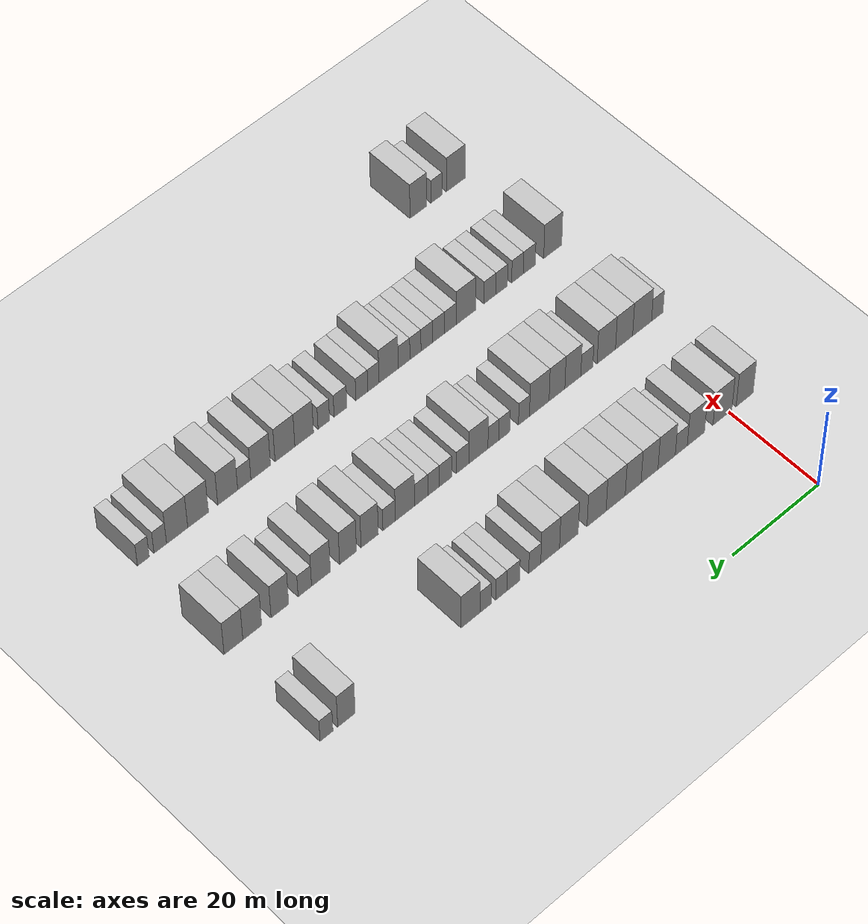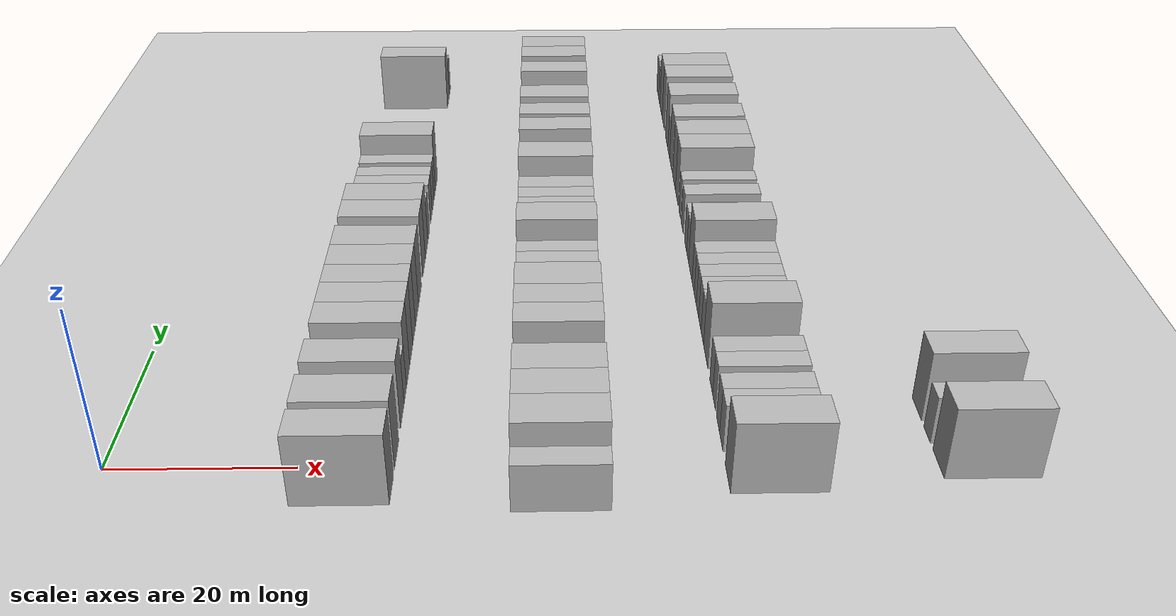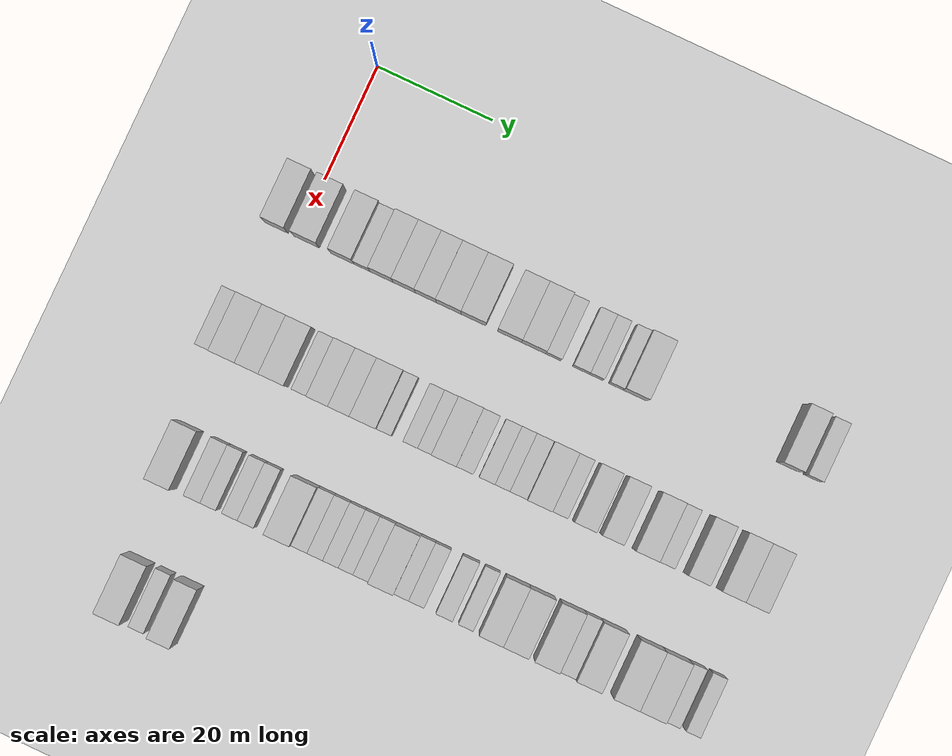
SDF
<sdf version="1.6">
 <world name="default">
  <include><name>ground_plane_1</name><uri>model://HANNAS_ground_plane</uri></include>
  <model name="building_99">
   <static>1</static>
   <pose>25.0000 -3.5786 0 0.000000 0.000000 0.000000</pose>
   <link name="link">
    <pose>0 0 4.50 0 0 0</pose>
    <collision name="collision"><geometry><box><size>10.0000 4.0479 9.0000</size></box></geometry></collision>
    <visual name="visual">
     <cast_shadows>0</cast_shadows>
     <geometry><box><size>10.0000 4.0479 9.0000</size></box></geometry>
     <material>
      <script>
       <uri>model://HANNAS_wall/materials/scripts</uri>
       <uri>model://HANNAS_wall/materials/textures</uri>
       <name>vrc/HANNAS_wall</name>
      </script>
     </material>
    </visual>
   </link>
  </model>
  <model name="building_100">
   <static>1</static>
   <pose>25.0000 1.6723 0 0.000000 0.000000 0.000000</pose>
   <link name="link">
    <pose>0 0 4.50 0 0 0</pose>
    <collision name="collision"><geometry><box><size>10.0000 4.4539 9.0000</size></box></geometry></collision>
    <visual name="visual">
     <cast_shadows>0</cast_shadows>
     <geometry><box><size>10.0000 4.4539 9.0000</size></box></geometry>
     <material>
      <script>
       <uri>model://HANNAS_wall/materials/scripts</uri>
       <uri>model://HANNAS_wall/materials/textures</uri>
       <name>vrc/HANNAS_wall</name>
      </script>
     </material>
    </visual>
   </link>
  </model>
  <model name="building_101">
   <static>1</static>
   <pose>25.0000 7.9085 0 0.000000 0.000000 0.000000</pose>
   <link name="link">
    <pose>0 0 4.50 0 0 0</pose>
    <collision name="collision"><geometry><box><size>10.0000 4.0184 9.0000</size></box></geometry></collision>
    <visual name="visual">
     <cast_shadows>0</cast_shadows>
     <geometry><box><size>10.0000 4.0184 9.0000</size></box></geometry>
     <material>
      <script>
       <uri>model://HANNAS_wall/materials/scripts</uri>
       <uri>model://HANNAS_wall/materials/textures</uri>
       <name>vrc/HANNAS_wall</name>
      </script>
     </material>
    </visual>
   </link>
  </model>
  <model name="building_102">
   <static>1</static>
   <pose>25.0000 11.3242 0 0.000000 0.000000 0.000000</pose>
   <link name="link">
    <pose>0 0 3.00 0 0 0</pose>
    <collision name="collision"><geometry><box><size>10.0000 2.8128 6.0000</size></box></geometry></collision>
    <visual name="visual">
     <cast_shadows>0</cast_shadows>
     <geometry><box><size>10.0000 2.8128 6.0000</size></box></geometry>
     <material>
      <script>
       <uri>model://HANNAS_wall/materials/scripts</uri>
       <uri>model://HANNAS_wall/materials/textures</uri>
       <name>vrc/HANNAS_wall</name>
      </script>
     </material>
    </visual>
   </link>
  </model>
  <model name="building_103">
   <static>1</static>
   <pose>25.0000 14.7339 0 0.000000 0.000000 0.000000</pose>
   <link name="link">
    <pose>0 0 4.50 0 0 0</pose>
    <collision name="collision"><geometry><box><size>10.0000 4.0067 9.0000</size></box></geometry></collision>
    <visual name="visual">
     <cast_shadows>0</cast_shadows>
     <geometry><box><size>10.0000 4.0067 9.0000</size></box></geometry>
     <material>
      <script>
       <uri>model://HANNAS_wall/materials/scripts</uri>
       <uri>model://HANNAS_wall/materials/textures</uri>
       <name>vrc/HANNAS_wall</name>
      </script>
     </material>
    </visual>
   </link>
  </model>
  <model name="building_104">
   <static>1</static>
   <pose>25.0000 18.6872 0 0.000000 0.000000 0.000000</pose>
   <link name="link">
    <pose>0 0 4.50 0 0 0</pose>
    <collision name="collision"><geometry><box><size>10.0000 3.8999 9.0000</size></box></geometry></collision>
    <visual name="visual">
     <cast_shadows>0</cast_shadows>
     <geometry><box><size>10.0000 3.8999 9.0000</size></box></geometry>
     <material>
      <script>
       <uri>model://HANNAS_wall/materials/scripts</uri>
       <uri>model://HANNAS_wall/materials/textures</uri>
       <name>vrc/HANNAS_wall</name>
      </script>
     </material>
    </visual>
   </link>
  </model>
  <model name="building_105">
   <static>1</static>
   <pose>25.0000 22.4605 0 0.000000 0.000000 0.000000</pose>
   <link name="link">
    <pose>0 0 4.50 0 0 0</pose>
    <collision name="collision"><geometry><box><size>10.0000 3.6468 9.0000</size></box></geometry></collision>
    <visual name="visual">
     <cast_shadows>0</cast_shadows>
     <geometry><box><size>10.0000 3.6468 9.0000</size></box></geometry>
     <material>
      <script>
       <uri>model://HANNAS_wall/materials/scripts</uri>
       <uri>model://HANNAS_wall/materials/textures</uri>
       <name>vrc/HANNAS_wall</name>
      </script>
     </material>
    </visual>
   </link>
  </model>
  <model name="building_106">
   <static>1</static>
   <pose>25.0000 26.4567 0 0.000000 0.000000 0.000000</pose>
   <link name="link">
    <pose>0 0 4.50 0 0 0</pose>
    <collision name="collision"><geometry><box><size>10.0000 4.3454 9.0000</size></box></geometry></collision>
    <visual name="visual">
     <cast_shadows>0</cast_shadows>
     <geometry><box><size>10.0000 4.3454 9.0000</size></box></geometry>
     <material>
      <script>
       <uri>model://HANNAS_wall/materials/scripts</uri>
       <uri>model://HANNAS_wall/materials/textures</uri>
       <name>vrc/HANNAS_wall</name>
      </script>
     </material>
    </visual>
   </link>
  </model>
  <model name="building_107">
   <static>1</static>
   <pose>25.0000 30.7911 0 0.000000 0.000000 0.000000</pose>
   <link name="link">
    <pose>0 0 4.50 0 0 0</pose>
    <collision name="collision"><geometry><box><size>10.0000 4.3235 9.0000</size></box></geometry></collision>
    <visual name="visual">
     <cast_shadows>0</cast_shadows>
     <geometry><box><size>10.0000 4.3235 9.0000</size></box></geometry>
     <material>
      <script>
       <uri>model://HANNAS_wall/materials/scripts</uri>
       <uri>model://HANNAS_wall/materials/textures</uri>
       <name>vrc/HANNAS_wall</name>
      </script>
     </material>
    </visual>
   </link>
  </model>
  <model name="building_108">
   <static>1</static>
   <pose>25.0000 37.0425 0 0.000000 0.000000 0.000000</pose>
   <link name="link">
    <pose>0 0 4.50 0 0 0</pose>
    <collision name="collision"><geometry><box><size>10.0000 4.1794 9.0000</size></box></geometry></collision>
    <visual name="visual">
     <cast_shadows>0</cast_shadows>
     <geometry><box><size>10.0000 4.1794 9.0000</size></box></geometry>
     <material>
      <script>
       <uri>model://HANNAS_wall/materials/scripts</uri>
       <uri>model://HANNAS_wall/materials/textures</uri>
       <name>vrc/HANNAS_wall</name>
      </script>
     </material>
    </visual>
   </link>
  </model>
  <model name="building_109">
   <static>1</static>
   <pose>25.0000 41.2274 0 0.000000 0.000000 0.000000</pose>
   <link name="link">
    <pose>0 0 4.50 0 0 0</pose>
    <collision name="collision"><geometry><box><size>10.0000 4.1904 9.0000</size></box></geometry></collision>
    <visual name="visual">
     <cast_shadows>0</cast_shadows>
     <geometry><box><size>10.0000 4.1904 9.0000</size></box></geometry>
     <material>
      <script>
       <uri>model://HANNAS_wall/materials/scripts</uri>
       <uri>model://HANNAS_wall/materials/textures</uri>
       <name>vrc/HANNAS_wall</name>
      </script>
     </material>
    </visual>
   </link>
  </model>
  <model name="building_110">
   <static>1</static>
   <pose>25.0000 44.6607 0 0.000000 0.000000 0.000000</pose>
   <link name="link">
    <pose>0 0 3.00 0 0 0</pose>
    <collision name="collision"><geometry><box><size>10.0000 2.6761 6.0000</size></box></geometry></collision>
    <visual name="visual">
     <cast_shadows>0</cast_shadows>
     <geometry><box><size>10.0000 2.6761 6.0000</size></box></geometry>
     <material>
      <script>
       <uri>model://HANNAS_wall/materials/scripts</uri>
       <uri>model://HANNAS_wall/materials/textures</uri>
       <name>vrc/HANNAS_wall</name>
      </script>
     </material>
    </visual>
   </link>
  </model>
  <model name="building_111">
   <static>1</static>
   <pose>25.0000 49.4309 0 0.000000 0.000000 0.000000</pose>
   <link name="link">
    <pose>0 0 3.00 0 0 0</pose>
    <collision name="collision"><geometry><box><size>10.0000 2.8644 6.0000</size></box></geometry></collision>
    <visual name="visual">
     <cast_shadows>0</cast_shadows>
     <geometry><box><size>10.0000 2.8644 6.0000</size></box></geometry>
     <material>
      <script>
       <uri>model://HANNAS_wall/materials/scripts</uri>
       <uri>model://HANNAS_wall/materials/textures</uri>
       <name>vrc/HANNAS_wall</name>
      </script>
     </material>
    </visual>
   </link>
  </model>
  <model name="building_112">
   <static>1</static>
   <pose>25.0000 52.0760 0 0.000000 0.000000 0.000000</pose>
   <link name="link">
    <pose>0 0 3.00 0 0 0</pose>
    <collision name="collision"><geometry><box><size>10.0000 2.4258 6.0000</size></box></geometry></collision>
    <visual name="visual">
     <cast_shadows>0</cast_shadows>
     <geometry><box><size>10.0000 2.4258 6.0000</size></box></geometry>
     <material>
      <script>
       <uri>model://HANNAS_wall/materials/scripts</uri>
       <uri>model://HANNAS_wall/materials/textures</uri>
       <name>vrc/HANNAS_wall</name>
      </script>
     </material>
    </visual>
   </link>
  </model>
  <model name="building_113">
   <static>1</static>
   <pose>25.0000 55.5192 0 0.000000 0.000000 0.000000</pose>
   <link name="link">
    <pose>0 0 3.00 0 0 0</pose>
    <collision name="collision"><geometry><box><size>10.0000 2.4606 6.0000</size></box></geometry></collision>
    <visual name="visual">
     <cast_shadows>0</cast_shadows>
     <geometry><box><size>10.0000 2.4606 6.0000</size></box></geometry>
     <material>
      <script>
       <uri>model://HANNAS_wall/materials/scripts</uri>
       <uri>model://HANNAS_wall/materials/textures</uri>
       <name>vrc/HANNAS_wall</name>
      </script>
     </material>
    </visual>
   </link>
  </model>
  <model name="building_114">
   <static>1</static>
   <pose>25.0000 58.7946 0 0.000000 0.000000 0.000000</pose>
   <link name="link">
    <pose>0 0 4.50 0 0 0</pose>
    <collision name="collision"><geometry><box><size>10.0000 4.0902 9.0000</size></box></geometry></collision>
    <visual name="visual">
     <cast_shadows>0</cast_shadows>
     <geometry><box><size>10.0000 4.0902 9.0000</size></box></geometry>
     <material>
      <script>
       <uri>model://HANNAS_wall/materials/scripts</uri>
       <uri>model://HANNAS_wall/materials/textures</uri>
       <name>vrc/HANNAS_wall</name>
      </script>
     </material>
    </visual>
   </link>
  </model>
  <model name="building_115">
   <static>1</static>
   <pose>25.0000 85.3161 0 0.000000 0.000000 0.000000</pose>
   <link name="link">
    <pose>0 0 4.50 0 0 0</pose>
    <collision name="collision"><geometry><box><size>10.0000 3.6509 9.0000</size></box></geometry></collision>
    <visual name="visual">
     <cast_shadows>0</cast_shadows>
     <geometry><box><size>10.0000 3.6509 9.0000</size></box></geometry>
     <material>
      <script>
       <uri>model://HANNAS_wall/materials/scripts</uri>
       <uri>model://HANNAS_wall/materials/textures</uri>
       <name>vrc/HANNAS_wall</name>
      </script>
     </material>
    </visual>
   </link>
  </model>
  <model name="building_116">
   <static>1</static>
   <pose>25.0000 89.4896 0 0.000000 0.000000 0.000000</pose>
   <link name="link">
    <pose>0 0 3.00 0 0 0</pose>
    <collision name="collision"><geometry><box><size>10.0000 2.6961 6.0000</size></box></geometry></collision>
    <visual name="visual">
     <cast_shadows>0</cast_shadows>
     <geometry><box><size>10.0000 2.6961 6.0000</size></box></geometry>
     <material>
      <script>
       <uri>model://HANNAS_wall/materials/scripts</uri>
       <uri>model://HANNAS_wall/materials/textures</uri>
       <name>vrc/HANNAS_wall</name>
      </script>
     </material>
    </visual>
   </link>
  </model>
  <model name="building_273">
   <static>1</static>
   <pose>47.0000 -5.4066 0 0.000000 0.000000 0.000000</pose>
   <link name="link">
    <pose>0 0 3.00 0 0 0</pose>
    <collision name="collision"><geometry><box><size>10.0000 2.7260 6.0000</size></box></geometry></collision>
    <visual name="visual">
     <cast_shadows>0</cast_shadows>
     <geometry><box><size>10.0000 2.7260 6.0000</size></box></geometry>
     <material>
      <script>
       <uri>model://HANNAS_wall/materials/scripts</uri>
       <uri>model://HANNAS_wall/materials/textures</uri>
       <name>vrc/HANNAS_wall</name>
      </script>
     </material>
    </visual>
   </link>
  </model>
  <model name="building_274">
   <static>1</static>
   <pose>47.0000 -1.7953 0 0.000000 0.000000 0.000000</pose>
   <link name="link">
    <pose>0 0 4.50 0 0 0</pose>
    <collision name="collision"><geometry><box><size>10.0000 4.4967 9.0000</size></box></geometry></collision>
    <visual name="visual">
     <cast_shadows>0</cast_shadows>
     <geometry><box><size>10.0000 4.4967 9.0000</size></box></geometry>
     <material>
      <script>
       <uri>model://HANNAS_wall/materials/scripts</uri>
       <uri>model://HANNAS_wall/materials/textures</uri>
       <name>vrc/HANNAS_wall</name>
      </script>
     </material>
    </visual>
   </link>
  </model>
  <model name="building_275">
   <static>1</static>
   <pose>47.0000 2.4686 0 0.000000 0.000000 0.000000</pose>
   <link name="link">
    <pose>0 0 4.50 0 0 0</pose>
    <collision name="collision"><geometry><box><size>10.0000 4.0311 9.0000</size></box></geometry></collision>
    <visual name="visual">
     <cast_shadows>0</cast_shadows>
     <geometry><box><size>10.0000 4.0311 9.0000</size></box></geometry>
     <material>
      <script>
       <uri>model://HANNAS_wall/materials/scripts</uri>
       <uri>model://HANNAS_wall/materials/textures</uri>
       <name>vrc/HANNAS_wall</name>
      </script>
     </material>
    </visual>
   </link>
  </model>
  <model name="building_276">
   <static>1</static>
   <pose>47.0000 6.6446 0 0.000000 0.000000 0.000000</pose>
   <link name="link">
    <pose>0 0 4.50 0 0 0</pose>
    <collision name="collision"><geometry><box><size>10.0000 4.3209 9.0000</size></box></geometry></collision>
    <visual name="visual">
     <cast_shadows>0</cast_shadows>
     <geometry><box><size>10.0000 4.3209 9.0000</size></box></geometry>
     <material>
      <script>
       <uri>model://HANNAS_wall/materials/scripts</uri>
       <uri>model://HANNAS_wall/materials/textures</uri>
       <name>vrc/HANNAS_wall</name>
      </script>
     </material>
    </visual>
   </link>
  </model>
  <model name="building_277">
   <static>1</static>
   <pose>47.0000 11.2035 0 0.000000 0.000000 0.000000</pose>
   <link name="link">
    <pose>0 0 3.00 0 0 0</pose>
    <collision name="collision"><geometry><box><size>10.0000 2.7969 6.0000</size></box></geometry></collision>
    <visual name="visual">
     <cast_shadows>0</cast_shadows>
     <geometry><box><size>10.0000 2.7969 6.0000</size></box></geometry>
     <material>
      <script>
       <uri>model://HANNAS_wall/materials/scripts</uri>
       <uri>model://HANNAS_wall/materials/textures</uri>
       <name>vrc/HANNAS_wall</name>
      </script>
     </material>
    </visual>
   </link>
  </model>
  <model name="building_278">
   <static>1</static>
   <pose>47.0000 14.4505 0 0.000000 0.000000 0.000000</pose>
   <link name="link">
    <pose>0 0 4.50 0 0 0</pose>
    <collision name="collision"><geometry><box><size>10.0000 3.6971 9.0000</size></box></geometry></collision>
    <visual name="visual">
     <cast_shadows>0</cast_shadows>
     <geometry><box><size>10.0000 3.6971 9.0000</size></box></geometry>
     <material>
      <script>
       <uri>model://HANNAS_wall/materials/scripts</uri>
       <uri>model://HANNAS_wall/materials/textures</uri>
       <name>vrc/HANNAS_wall</name>
      </script>
     </material>
    </visual>
   </link>
  </model>
  <model name="building_279">
   <static>1</static>
   <pose>47.0000 18.1224 0 0.000000 0.000000 0.000000</pose>
   <link name="link">
    <pose>0 0 4.50 0 0 0</pose>
    <collision name="collision"><geometry><box><size>10.0000 3.6466 9.0000</size></box></geometry></collision>
    <visual name="visual">
     <cast_shadows>0</cast_shadows>
     <geometry><box><size>10.0000 3.6466 9.0000</size></box></geometry>
     <material>
      <script>
       <uri>model://HANNAS_wall/materials/scripts</uri>
       <uri>model://HANNAS_wall/materials/textures</uri>
       <name>vrc/HANNAS_wall</name>
      </script>
     </material>
    </visual>
   </link>
  </model>
  <model name="building_280">
   <static>1</static>
   <pose>47.0000 22.1916 0 0.000000 0.000000 0.000000</pose>
   <link name="link">
    <pose>0 0 4.50 0 0 0</pose>
    <collision name="collision"><geometry><box><size>10.0000 4.4919 9.0000</size></box></geometry></collision>
    <visual name="visual">
     <cast_shadows>0</cast_shadows>
     <geometry><box><size>10.0000 4.4919 9.0000</size></box></geometry>
     <material>
      <script>
       <uri>model://HANNAS_wall/materials/scripts</uri>
       <uri>model://HANNAS_wall/materials/textures</uri>
       <name>vrc/HANNAS_wall</name>
      </script>
     </material>
    </visual>
   </link>
  </model>
  <model name="building_281">
   <static>1</static>
   <pose>47.0000 25.6968 0 0.000000 0.000000 0.000000</pose>
   <link name="link">
    <pose>0 0 3.00 0 0 0</pose>
    <collision name="collision"><geometry><box><size>10.0000 2.5184 6.0000</size></box></geometry></collision>
    <visual name="visual">
     <cast_shadows>0</cast_shadows>
     <geometry><box><size>10.0000 2.5184 6.0000</size></box></geometry>
     <material>
      <script>
       <uri>model://HANNAS_wall/materials/scripts</uri>
       <uri>model://HANNAS_wall/materials/textures</uri>
       <name>vrc/HANNAS_wall</name>
      </script>
     </material>
    </visual>
   </link>
  </model>
  <model name="building_282">
   <static>1</static>
   <pose>47.0000 30.2159 0 0.000000 0.000000 0.000000</pose>
   <link name="link">
    <pose>0 0 3.00 0 0 0</pose>
    <collision name="collision"><geometry><box><size>10.0000 2.5199 6.0000</size></box></geometry></collision>
    <visual name="visual">
     <cast_shadows>0</cast_shadows>
     <geometry><box><size>10.0000 2.5199 6.0000</size></box></geometry>
     <material>
      <script>
       <uri>model://HANNAS_wall/materials/scripts</uri>
       <uri>model://HANNAS_wall/materials/textures</uri>
       <name>vrc/HANNAS_wall</name>
      </script>
     </material>
    </visual>
   </link>
  </model>
  <model name="building_283">
   <static>1</static>
   <pose>47.0000 32.6810 0 0.000000 0.000000 0.000000</pose>
   <link name="link">
    <pose>0 0 3.00 0 0 0</pose>
    <collision name="collision"><geometry><box><size>10.0000 2.4103 6.0000</size></box></geometry></collision>
    <visual name="visual">
     <cast_shadows>0</cast_shadows>
     <geometry><box><size>10.0000 2.4103 6.0000</size></box></geometry>
     <material>
      <script>
       <uri>model://HANNAS_wall/materials/scripts</uri>
       <uri>model://HANNAS_wall/materials/textures</uri>
       <name>vrc/HANNAS_wall</name>
      </script>
     </material>
    </visual>
   </link>
  </model>
  <model name="building_284">
   <static>1</static>
   <pose>47.0000 36.0242 0 0.000000 0.000000 0.000000</pose>
   <link name="link">
    <pose>0 0 4.50 0 0 0</pose>
    <collision name="collision"><geometry><box><size>10.0000 4.2761 9.0000</size></box></geometry></collision>
    <visual name="visual">
     <cast_shadows>0</cast_shadows>
     <geometry><box><size>10.0000 4.2761 9.0000</size></box></geometry>
     <material>
      <script>
       <uri>model://HANNAS_wall/materials/scripts</uri>
       <uri>model://HANNAS_wall/materials/textures</uri>
       <name>vrc/HANNAS_wall</name>
      </script>
     </material>
    </visual>
   </link>
  </model>
  <model name="building_285">
   <static>1</static>
   <pose>47.0000 39.6017 0 0.000000 0.000000 0.000000</pose>
   <link name="link">
    <pose>0 0 3.00 0 0 0</pose>
    <collision name="collision"><geometry><box><size>10.0000 2.8790 6.0000</size></box></geometry></collision>
    <visual name="visual">
     <cast_shadows>0</cast_shadows>
     <geometry><box><size>10.0000 2.8790 6.0000</size></box></geometry>
     <material>
      <script>
       <uri>model://HANNAS_wall/materials/scripts</uri>
       <uri>model://HANNAS_wall/materials/textures</uri>
       <name>vrc/HANNAS_wall</name>
      </script>
     </material>
    </visual>
   </link>
  </model>
  <model name="building_286">
   <static>1</static>
   <pose>47.0000 43.3974 0 0.000000 0.000000 0.000000</pose>
   <link name="link">
    <pose>0 0 3.00 0 0 0</pose>
    <collision name="collision"><geometry><box><size>10.0000 2.7123 6.0000</size></box></geometry></collision>
    <visual name="visual">
     <cast_shadows>0</cast_shadows>
     <geometry><box><size>10.0000 2.7123 6.0000</size></box></geometry>
     <material>
      <script>
       <uri>model://HANNAS_wall/materials/scripts</uri>
       <uri>model://HANNAS_wall/materials/textures</uri>
       <name>vrc/HANNAS_wall</name>
      </script>
     </material>
    </visual>
   </link>
  </model>
  <model name="building_287">
   <static>1</static>
   <pose>47.0000 46.0360 0 0.000000 0.000000 0.000000</pose>
   <link name="link">
    <pose>0 0 3.00 0 0 0</pose>
    <collision name="collision"><geometry><box><size>10.0000 2.5650 6.0000</size></box></geometry></collision>
    <visual name="visual">
     <cast_shadows>0</cast_shadows>
     <geometry><box><size>10.0000 2.5650 6.0000</size></box></geometry>
     <material>
      <script>
       <uri>model://HANNAS_wall/materials/scripts</uri>
       <uri>model://HANNAS_wall/materials/textures</uri>
       <name>vrc/HANNAS_wall</name>
      </script>
     </material>
    </visual>
   </link>
  </model>
  <model name="building_288">
   <static>1</static>
   <pose>47.0000 48.7951 0 0.000000 0.000000 0.000000</pose>
   <link name="link">
    <pose>0 0 3.00 0 0 0</pose>
    <collision name="collision"><geometry><box><size>10.0000 2.9533 6.0000</size></box></geometry></collision>
    <visual name="visual">
     <cast_shadows>0</cast_shadows>
     <geometry><box><size>10.0000 2.9533 6.0000</size></box></geometry>
     <material>
      <script>
       <uri>model://HANNAS_wall/materials/scripts</uri>
       <uri>model://HANNAS_wall/materials/textures</uri>
       <name>vrc/HANNAS_wall</name>
      </script>
     </material>
    </visual>
   </link>
  </model>
  <model name="building_289">
   <static>1</static>
   <pose>47.0000 52.3884 0 0.000000 0.000000 0.000000</pose>
   <link name="link">
    <pose>0 0 4.50 0 0 0</pose>
    <collision name="collision"><geometry><box><size>10.0000 4.2331 9.0000</size></box></geometry></collision>
    <visual name="visual">
     <cast_shadows>0</cast_shadows>
     <geometry><box><size>10.0000 4.2331 9.0000</size></box></geometry>
     <material>
      <script>
       <uri>model://HANNAS_wall/materials/scripts</uri>
       <uri>model://HANNAS_wall/materials/textures</uri>
       <name>vrc/HANNAS_wall</name>
      </script>
     </material>
    </visual>
   </link>
  </model>
  <model name="building_290">
   <static>1</static>
   <pose>47.0000 55.8755 0 0.000000 0.000000 0.000000</pose>
   <link name="link">
    <pose>0 0 3.00 0 0 0</pose>
    <collision name="collision"><geometry><box><size>10.0000 2.7411 6.0000</size></box></geometry></collision>
    <visual name="visual">
     <cast_shadows>0</cast_shadows>
     <geometry><box><size>10.0000 2.7411 6.0000</size></box></geometry>
     <material>
      <script>
       <uri>model://HANNAS_wall/materials/scripts</uri>
       <uri>model://HANNAS_wall/materials/textures</uri>
       <name>vrc/HANNAS_wall</name>
      </script>
     </material>
    </visual>
   </link>
  </model>
  <model name="building_291">
   <static>1</static>
   <pose>47.0000 60.1244 0 0.000000 0.000000 0.000000</pose>
   <link name="link">
    <pose>0 0 4.50 0 0 0</pose>
    <collision name="collision"><geometry><box><size>10.0000 3.7568 9.0000</size></box></geometry></collision>
    <visual name="visual">
     <cast_shadows>0</cast_shadows>
     <geometry><box><size>10.0000 3.7568 9.0000</size></box></geometry>
     <material>
      <script>
       <uri>model://HANNAS_wall/materials/scripts</uri>
       <uri>model://HANNAS_wall/materials/textures</uri>
       <name>vrc/HANNAS_wall</name>
      </script>
     </material>
    </visual>
   </link>
  </model>
  <model name="building_292">
   <static>1</static>
   <pose>47.0000 64.8252 0 0.000000 0.000000 0.000000</pose>
   <link name="link">
    <pose>0 0 4.50 0 0 0</pose>
    <collision name="collision"><geometry><box><size>10.0000 3.6447 9.0000</size></box></geometry></collision>
    <visual name="visual">
     <cast_shadows>0</cast_shadows>
     <geometry><box><size>10.0000 3.6447 9.0000</size></box></geometry>
     <material>
      <script>
       <uri>model://HANNAS_wall/materials/scripts</uri>
       <uri>model://HANNAS_wall/materials/textures</uri>
       <name>vrc/HANNAS_wall</name>
      </script>
     </material>
    </visual>
   </link>
  </model>
  <model name="building_293">
   <static>1</static>
   <pose>47.0000 70.6656 0 0.000000 0.000000 0.000000</pose>
   <link name="link">
    <pose>0 0 4.50 0 0 0</pose>
    <collision name="collision"><geometry><box><size>10.0000 4.0361 9.0000</size></box></geometry></collision>
    <visual name="visual">
     <cast_shadows>0</cast_shadows>
     <geometry><box><size>10.0000 4.0361 9.0000</size></box></geometry>
     <material>
      <script>
       <uri>model://HANNAS_wall/materials/scripts</uri>
       <uri>model://HANNAS_wall/materials/textures</uri>
       <name>vrc/HANNAS_wall</name>
      </script>
     </material>
    </visual>
   </link>
  </model>
  <model name="building_294">
   <static>1</static>
   <pose>47.0000 74.1210 0 0.000000 0.000000 0.000000</pose>
   <link name="link">
    <pose>0 0 3.00 0 0 0</pose>
    <collision name="collision"><geometry><box><size>10.0000 2.8747 6.0000</size></box></geometry></collision>
    <visual name="visual">
     <cast_shadows>0</cast_shadows>
     <geometry><box><size>10.0000 2.8747 6.0000</size></box></geometry>
     <material>
      <script>
       <uri>model://HANNAS_wall/materials/scripts</uri>
       <uri>model://HANNAS_wall/materials/textures</uri>
       <name>vrc/HANNAS_wall</name>
      </script>
     </material>
    </visual>
   </link>
  </model>
  <model name="building_295">
   <static>1</static>
   <pose>47.0000 79.4238 0 0.000000 0.000000 0.000000</pose>
   <link name="link">
    <pose>0 0 4.50 0 0 0</pose>
    <collision name="collision"><geometry><box><size>10.0000 3.7308 9.0000</size></box></geometry></collision>
    <visual name="visual">
     <cast_shadows>0</cast_shadows>
     <geometry><box><size>10.0000 3.7308 9.0000</size></box></geometry>
     <material>
      <script>
       <uri>model://HANNAS_wall/materials/scripts</uri>
       <uri>model://HANNAS_wall/materials/textures</uri>
       <name>vrc/HANNAS_wall</name>
      </script>
     </material>
    </visual>
   </link>
  </model>
  <model name="building_296">
   <static>1</static>
   <pose>47.0000 85.2600 0 0.000000 0.000000 0.000000</pose>
   <link name="link">
    <pose>0 0 4.50 0 0 0</pose>
    <collision name="collision"><geometry><box><size>10.0000 3.9417 9.0000</size></box></geometry></collision>
    <visual name="visual">
     <cast_shadows>0</cast_shadows>
     <geometry><box><size>10.0000 3.9417 9.0000</size></box></geometry>
     <material>
      <script>
       <uri>model://HANNAS_wall/materials/scripts</uri>
       <uri>model://HANNAS_wall/materials/textures</uri>
       <name>vrc/HANNAS_wall</name>
      </script>
     </material>
    </visual>
   </link>
  </model>
  <model name="building_297">
   <static>1</static>
   <pose>47.0000 89.1967 0 0.000000 0.000000 0.000000</pose>
   <link name="link">
    <pose>0 0 4.50 0 0 0</pose>
    <collision name="collision"><geometry><box><size>10.0000 3.9317 9.0000</size></box></geometry></collision>
    <visual name="visual">
     <cast_shadows>0</cast_shadows>
     <geometry><box><size>10.0000 3.9317 9.0000</size></box></geometry>
     <material>
      <script>
       <uri>model://HANNAS_wall/materials/scripts</uri>
       <uri>model://HANNAS_wall/materials/textures</uri>
       <name>vrc/HANNAS_wall</name>
      </script>
     </material>
    </visual>
   </link>
  </model>
  <model name="building_457">
   <static>1</static>
   <pose>69.0000 -2.4509 0 0.000000 0.000000 0.000000</pose>
   <link name="link">
    <pose>0 0 4.50 0 0 0</pose>
    <collision name="collision"><geometry><box><size>10.0000 4.2604 9.0000</size></box></geometry></collision>
    <visual name="visual">
     <cast_shadows>0</cast_shadows>
     <geometry><box><size>10.0000 4.2604 9.0000</size></box></geometry>
     <material>
      <script>
       <uri>model://HANNAS_wall/materials/scripts</uri>
       <uri>model://HANNAS_wall/materials/textures</uri>
       <name>vrc/HANNAS_wall</name>
      </script>
     </material>
    </visual>
   </link>
  </model>
  <model name="building_458">
   <static>1</static>
   <pose>69.0000 3.1097 0 0.000000 0.000000 0.000000</pose>
   <link name="link">
    <pose>0 0 3.00 0 0 0</pose>
    <collision name="collision"><geometry><box><size>10.0000 2.8607 6.0000</size></box></geometry></collision>
    <visual name="visual">
     <cast_shadows>0</cast_shadows>
     <geometry><box><size>10.0000 2.8607 6.0000</size></box></geometry>
     <material>
      <script>
       <uri>model://HANNAS_wall/materials/scripts</uri>
       <uri>model://HANNAS_wall/materials/textures</uri>
       <name>vrc/HANNAS_wall</name>
      </script>
     </material>
    </visual>
   </link>
  </model>
  <model name="building_459">
   <static>1</static>
   <pose>69.0000 5.8913 0 0.000000 0.000000 0.000000</pose>
   <link name="link">
    <pose>0 0 3.00 0 0 0</pose>
    <collision name="collision"><geometry><box><size>10.0000 2.7025 6.0000</size></box></geometry></collision>
    <visual name="visual">
     <cast_shadows>0</cast_shadows>
     <geometry><box><size>10.0000 2.7025 6.0000</size></box></geometry>
     <material>
      <script>
       <uri>model://HANNAS_wall/materials/scripts</uri>
       <uri>model://HANNAS_wall/materials/textures</uri>
       <name>vrc/HANNAS_wall</name>
      </script>
     </material>
    </visual>
   </link>
  </model>
  <model name="building_460">
   <static>1</static>
   <pose>69.0000 9.5917 0 0.000000 0.000000 0.000000</pose>
   <link name="link">
    <pose>0 0 3.00 0 0 0</pose>
    <collision name="collision"><geometry><box><size>10.0000 2.6982 6.0000</size></box></geometry></collision>
    <visual name="visual">
     <cast_shadows>0</cast_shadows>
     <geometry><box><size>10.0000 2.6982 6.0000</size></box></geometry>
     <material>
      <script>
       <uri>model://HANNAS_wall/materials/scripts</uri>
       <uri>model://HANNAS_wall/materials/textures</uri>
       <name>vrc/HANNAS_wall</name>
      </script>
     </material>
    </visual>
   </link>
  </model>
  <model name="building_461">
   <static>1</static>
   <pose>69.0000 12.3222 0 0.000000 0.000000 0.000000</pose>
   <link name="link">
    <pose>0 0 3.00 0 0 0</pose>
    <collision name="collision"><geometry><box><size>10.0000 2.7628 6.0000</size></box></geometry></collision>
    <visual name="visual">
     <cast_shadows>0</cast_shadows>
     <geometry><box><size>10.0000 2.7628 6.0000</size></box></geometry>
     <material>
      <script>
       <uri>model://HANNAS_wall/materials/scripts</uri>
       <uri>model://HANNAS_wall/materials/textures</uri>
       <name>vrc/HANNAS_wall</name>
      </script>
     </material>
    </visual>
   </link>
  </model>
  <model name="building_462">
   <static>1</static>
   <pose>69.0000 17.9052 0 0.000000 0.000000 0.000000</pose>
   <link name="link">
    <pose>0 0 4.50 0 0 0</pose>
    <collision name="collision"><geometry><box><size>10.0000 4.4031 9.0000</size></box></geometry></collision>
    <visual name="visual">
     <cast_shadows>0</cast_shadows>
     <geometry><box><size>10.0000 4.4031 9.0000</size></box></geometry>
     <material>
      <script>
       <uri>model://HANNAS_wall/materials/scripts</uri>
       <uri>model://HANNAS_wall/materials/textures</uri>
       <name>vrc/HANNAS_wall</name>
      </script>
     </material>
    </visual>
   </link>
  </model>
  <model name="building_463">
   <static>1</static>
   <pose>69.0000 21.4842 0 0.000000 0.000000 0.000000</pose>
   <link name="link">
    <pose>0 0 3.00 0 0 0</pose>
    <collision name="collision"><geometry><box><size>10.0000 2.7549 6.0000</size></box></geometry></collision>
    <visual name="visual">
     <cast_shadows>0</cast_shadows>
     <geometry><box><size>10.0000 2.7549 6.0000</size></box></geometry>
     <material>
      <script>
       <uri>model://HANNAS_wall/materials/scripts</uri>
       <uri>model://HANNAS_wall/materials/textures</uri>
       <name>vrc/HANNAS_wall</name>
      </script>
     </material>
    </visual>
   </link>
  </model>
  <model name="building_464">
   <static>1</static>
   <pose>69.0000 24.2068 0 0.000000 0.000000 0.000000</pose>
   <link name="link">
    <pose>0 0 3.00 0 0 0</pose>
    <collision name="collision"><geometry><box><size>10.0000 2.6904 6.0000</size></box></geometry></collision>
    <visual name="visual">
     <cast_shadows>0</cast_shadows>
     <geometry><box><size>10.0000 2.6904 6.0000</size></box></geometry>
     <material>
      <script>
       <uri>model://HANNAS_wall/materials/scripts</uri>
       <uri>model://HANNAS_wall/materials/textures</uri>
       <name>vrc/HANNAS_wall</name>
      </script>
     </material>
    </visual>
   </link>
  </model>
  <model name="building_465">
   <static>1</static>
   <pose>69.0000 26.8869 0 0.000000 0.000000 0.000000</pose>
   <link name="link">
    <pose>0 0 3.00 0 0 0</pose>
    <collision name="collision"><geometry><box><size>10.0000 2.6697 6.0000</size></box></geometry></collision>
    <visual name="visual">
     <cast_shadows>0</cast_shadows>
     <geometry><box><size>10.0000 2.6697 6.0000</size></box></geometry>
     <material>
      <script>
       <uri>model://HANNAS_wall/materials/scripts</uri>
       <uri>model://HANNAS_wall/materials/textures</uri>
       <name>vrc/HANNAS_wall</name>
      </script>
     </material>
    </visual>
   </link>
  </model>
  <model name="building_466">
   <static>1</static>
   <pose>69.0000 29.4772 0 0.000000 0.000000 0.000000</pose>
   <link name="link">
    <pose>0 0 3.00 0 0 0</pose>
    <collision name="collision"><geometry><box><size>10.0000 2.5109 6.0000</size></box></geometry></collision>
    <visual name="visual">
     <cast_shadows>0</cast_shadows>
     <geometry><box><size>10.0000 2.5109 6.0000</size></box></geometry>
     <material>
      <script>
       <uri>model://HANNAS_wall/materials/scripts</uri>
       <uri>model://HANNAS_wall/materials/textures</uri>
       <name>vrc/HANNAS_wall</name>
      </script>
     </material>
    </visual>
   </link>
  </model>
  <model name="building_467">
   <static>1</static>
   <pose>69.0000 32.0564 0 0.000000 0.000000 0.000000</pose>
   <link name="link">
    <pose>0 0 3.00 0 0 0</pose>
    <collision name="collision"><geometry><box><size>10.0000 2.6475 6.0000</size></box></geometry></collision>
    <visual name="visual">
     <cast_shadows>0</cast_shadows>
     <geometry><box><size>10.0000 2.6475 6.0000</size></box></geometry>
     <material>
      <script>
       <uri>model://HANNAS_wall/materials/scripts</uri>
       <uri>model://HANNAS_wall/materials/textures</uri>
       <name>vrc/HANNAS_wall</name>
      </script>
     </material>
    </visual>
   </link>
  </model>
  <model name="building_468">
   <static>1</static>
   <pose>69.0000 35.5480 0 0.000000 0.000000 0.000000</pose>
   <link name="link">
    <pose>0 0 4.50 0 0 0</pose>
    <collision name="collision"><geometry><box><size>10.0000 4.3356 9.0000</size></box></geometry></collision>
    <visual name="visual">
     <cast_shadows>0</cast_shadows>
     <geometry><box><size>10.0000 4.3356 9.0000</size></box></geometry>
     <material>
      <script>
       <uri>model://HANNAS_wall/materials/scripts</uri>
       <uri>model://HANNAS_wall/materials/textures</uri>
       <name>vrc/HANNAS_wall</name>
      </script>
     </material>
    </visual>
   </link>
  </model>
  <model name="building_469">
   <static>1</static>
   <pose>69.0000 38.9818 0 0.000000 0.000000 0.000000</pose>
   <link name="link">
    <pose>0 0 3.00 0 0 0</pose>
    <collision name="collision"><geometry><box><size>10.0000 2.5320 6.0000</size></box></geometry></collision>
    <visual name="visual">
     <cast_shadows>0</cast_shadows>
     <geometry><box><size>10.0000 2.5320 6.0000</size></box></geometry>
     <material>
      <script>
       <uri>model://HANNAS_wall/materials/scripts</uri>
       <uri>model://HANNAS_wall/materials/textures</uri>
       <name>vrc/HANNAS_wall</name>
      </script>
     </material>
    </visual>
   </link>
  </model>
  <model name="building_470">
   <static>1</static>
   <pose>69.0000 41.5823 0 0.000000 0.000000 0.000000</pose>
   <link name="link">
    <pose>0 0 3.00 0 0 0</pose>
    <collision name="collision"><geometry><box><size>10.0000 2.6691 6.0000</size></box></geometry></collision>
    <visual name="visual">
     <cast_shadows>0</cast_shadows>
     <geometry><box><size>10.0000 2.6691 6.0000</size></box></geometry>
     <material>
      <script>
       <uri>model://HANNAS_wall/materials/scripts</uri>
       <uri>model://HANNAS_wall/materials/textures</uri>
       <name>vrc/HANNAS_wall</name>
      </script>
     </material>
    </visual>
   </link>
  </model>
  <model name="building_471">
   <static>1</static>
   <pose>69.0000 46.3509 0 0.000000 0.000000 0.000000</pose>
   <link name="link">
    <pose>0 0 3.00 0 0 0</pose>
    <collision name="collision"><geometry><box><size>10.0000 2.8679 6.0000</size></box></geometry></collision>
    <visual name="visual">
     <cast_shadows>0</cast_shadows>
     <geometry><box><size>10.0000 2.8679 6.0000</size></box></geometry>
     <material>
      <script>
       <uri>model://HANNAS_wall/materials/scripts</uri>
       <uri>model://HANNAS_wall/materials/textures</uri>
       <name>vrc/HANNAS_wall</name>
      </script>
     </material>
    </visual>
   </link>
  </model>
  <model name="building_472">
   <static>1</static>
   <pose>69.0000 50.0619 0 0.000000 0.000000 0.000000</pose>
   <link name="link">
    <pose>0 0 3.00 0 0 0</pose>
    <collision name="collision"><geometry><box><size>10.0000 2.5542 6.0000</size></box></geometry></collision>
    <visual name="visual">
     <cast_shadows>0</cast_shadows>
     <geometry><box><size>10.0000 2.5542 6.0000</size></box></geometry>
     <material>
      <script>
       <uri>model://HANNAS_wall/materials/scripts</uri>
       <uri>model://HANNAS_wall/materials/textures</uri>
       <name>vrc/HANNAS_wall</name>
      </script>
     </material>
    </visual>
   </link>
  </model>
  <model name="building_473">
   <static>1</static>
   <pose>69.0000 54.3929 0 0.000000 0.000000 0.000000</pose>
   <link name="link">
    <pose>0 0 4.50 0 0 0</pose>
    <collision name="collision"><geometry><box><size>10.0000 4.1076 9.0000</size></box></geometry></collision>
    <visual name="visual">
     <cast_shadows>0</cast_shadows>
     <geometry><box><size>10.0000 4.1076 9.0000</size></box></geometry>
     <material>
      <script>
       <uri>model://HANNAS_wall/materials/scripts</uri>
       <uri>model://HANNAS_wall/materials/textures</uri>
       <name>vrc/HANNAS_wall</name>
      </script>
     </material>
    </visual>
   </link>
  </model>
  <model name="building_474">
   <static>1</static>
   <pose>69.0000 58.6129 0 0.000000 0.000000 0.000000</pose>
   <link name="link">
    <pose>0 0 4.50 0 0 0</pose>
    <collision name="collision"><geometry><box><size>10.0000 4.3325 9.0000</size></box></geometry></collision>
    <visual name="visual">
     <cast_shadows>0</cast_shadows>
     <geometry><box><size>10.0000 4.3325 9.0000</size></box></geometry>
     <material>
      <script>
       <uri>model://HANNAS_wall/materials/scripts</uri>
       <uri>model://HANNAS_wall/materials/textures</uri>
       <name>vrc/HANNAS_wall</name>
      </script>
     </material>
    </visual>
   </link>
  </model>
  <model name="building_475">
   <static>1</static>
   <pose>69.0000 63.9003 0 0.000000 0.000000 0.000000</pose>
   <link name="link">
    <pose>0 0 4.50 0 0 0</pose>
    <collision name="collision"><geometry><box><size>10.0000 4.2422 9.0000</size></box></geometry></collision>
    <visual name="visual">
     <cast_shadows>0</cast_shadows>
     <geometry><box><size>10.0000 4.2422 9.0000</size></box></geometry>
     <material>
      <script>
       <uri>model://HANNAS_wall/materials/scripts</uri>
       <uri>model://HANNAS_wall/materials/textures</uri>
       <name>vrc/HANNAS_wall</name>
      </script>
     </material>
    </visual>
   </link>
  </model>
  <model name="building_476">
   <static>1</static>
   <pose>69.0000 67.4533 0 0.000000 0.000000 0.000000</pose>
   <link name="link">
    <pose>0 0 3.00 0 0 0</pose>
    <collision name="collision"><geometry><box><size>10.0000 2.8638 6.0000</size></box></geometry></collision>
    <visual name="visual">
     <cast_shadows>0</cast_shadows>
     <geometry><box><size>10.0000 2.8638 6.0000</size></box></geometry>
     <material>
      <script>
       <uri>model://HANNAS_wall/materials/scripts</uri>
       <uri>model://HANNAS_wall/materials/textures</uri>
       <name>vrc/HANNAS_wall</name>
      </script>
     </material>
    </visual>
   </link>
  </model>
  <model name="building_477">
   <static>1</static>
   <pose>69.0000 71.0246 0 0.000000 0.000000 0.000000</pose>
   <link name="link">
    <pose>0 0 4.50 0 0 0</pose>
    <collision name="collision"><geometry><box><size>10.0000 4.2788 9.0000</size></box></geometry></collision>
    <visual name="visual">
     <cast_shadows>0</cast_shadows>
     <geometry><box><size>10.0000 4.2788 9.0000</size></box></geometry>
     <material>
      <script>
       <uri>model://HANNAS_wall/materials/scripts</uri>
       <uri>model://HANNAS_wall/materials/textures</uri>
       <name>vrc/HANNAS_wall</name>
      </script>
     </material>
    </visual>
   </link>
  </model>
  <model name="building_478">
   <static>1</static>
   <pose>69.0000 77.3713 0 0.000000 0.000000 0.000000</pose>
   <link name="link">
    <pose>0 0 4.50 0 0 0</pose>
    <collision name="collision"><geometry><box><size>10.0000 4.4147 9.0000</size></box></geometry></collision>
    <visual name="visual">
     <cast_shadows>0</cast_shadows>
     <geometry><box><size>10.0000 4.4147 9.0000</size></box></geometry>
     <material>
      <script>
       <uri>model://HANNAS_wall/materials/scripts</uri>
       <uri>model://HANNAS_wall/materials/textures</uri>
       <name>vrc/HANNAS_wall</name>
      </script>
     </material>
    </visual>
   </link>
  </model>
  <model name="building_479">
   <static>1</static>
   <pose>69.0000 81.8195 0 0.000000 0.000000 0.000000</pose>
   <link name="link">
    <pose>0 0 4.50 0 0 0</pose>
    <collision name="collision"><geometry><box><size>10.0000 4.4817 9.0000</size></box></geometry></collision>
    <visual name="visual">
     <cast_shadows>0</cast_shadows>
     <geometry><box><size>10.0000 4.4817 9.0000</size></box></geometry>
     <material>
      <script>
       <uri>model://HANNAS_wall/materials/scripts</uri>
       <uri>model://HANNAS_wall/materials/textures</uri>
       <name>vrc/HANNAS_wall</name>
      </script>
     </material>
    </visual>
   </link>
  </model>
  <model name="building_480">
   <static>1</static>
   <pose>69.0000 85.3825 0 0.000000 0.000000 0.000000</pose>
   <link name="link">
    <pose>0 0 3.00 0 0 0</pose>
    <collision name="collision"><geometry><box><size>10.0000 2.6443 6.0000</size></box></geometry></collision>
    <visual name="visual">
     <cast_shadows>0</cast_shadows>
     <geometry><box><size>10.0000 2.6443 6.0000</size></box></geometry>
     <material>
      <script>
       <uri>model://HANNAS_wall/materials/scripts</uri>
       <uri>model://HANNAS_wall/materials/textures</uri>
       <name>vrc/HANNAS_wall</name>
      </script>
     </material>
    </visual>
   </link>
  </model>
  <model name="building_481">
   <static>1</static>
   <pose>69.0000 88.9479 0 0.000000 0.000000 0.000000</pose>
   <link name="link">
    <pose>0 0 3.00 0 0 0</pose>
    <collision name="collision"><geometry><box><size>10.0000 2.4866 6.0000</size></box></geometry></collision>
    <visual name="visual">
     <cast_shadows>0</cast_shadows>
     <geometry><box><size>10.0000 2.4866 6.0000</size></box></geometry>
     <material>
      <script>
       <uri>model://HANNAS_wall/materials/scripts</uri>
       <uri>model://HANNAS_wall/materials/textures</uri>
       <name>vrc/HANNAS_wall</name>
      </script>
     </material>
    </visual>
   </link>
  </model>
  <model name="building_655">
   <static>1</static>
   <pose>91.0000 -0.6236 0 0.000000 0.000000 0.000000</pose>
   <link name="link">
    <pose>0 0 4.50 0 0 0</pose>
    <collision name="collision"><geometry><box><size>10.0000 4.4188 9.0000</size></box></geometry></collision>
    <visual name="visual">
     <cast_shadows>0</cast_shadows>
     <geometry><box><size>10.0000 4.4188 9.0000</size></box></geometry>
     <material>
      <script>
       <uri>model://HANNAS_wall/materials/scripts</uri>
       <uri>model://HANNAS_wall/materials/textures</uri>
       <name>vrc/HANNAS_wall</name>
      </script>
     </material>
    </visual>
   </link>
  </model>
  <model name="building_656">
   <static>1</static>
   <pose>91.0000 3.9071 0 0.000000 0.000000 0.000000</pose>
   <link name="link">
    <pose>0 0 3.00 0 0 0</pose>
    <collision name="collision"><geometry><box><size>10.0000 2.6426 6.0000</size></box></geometry></collision>
    <visual name="visual">
     <cast_shadows>0</cast_shadows>
     <geometry><box><size>10.0000 2.6426 6.0000</size></box></geometry>
     <material>
      <script>
       <uri>model://HANNAS_wall/materials/scripts</uri>
       <uri>model://HANNAS_wall/materials/textures</uri>
       <name>vrc/HANNAS_wall</name>
      </script>
     </material>
    </visual>
   </link>
  </model>
  <model name="building_657">
   <static>1</static>
   <pose>91.0000 8.1876 0 0.000000 0.000000 0.000000</pose>
   <link name="link">
    <pose>0 0 4.50 0 0 0</pose>
    <collision name="collision"><geometry><box><size>10.0000 3.9185 9.0000</size></box></geometry></collision>
    <visual name="visual">
     <cast_shadows>0</cast_shadows>
     <geometry><box><size>10.0000 3.9185 9.0000</size></box></geometry>
     <material>
      <script>
       <uri>model://HANNAS_wall/materials/scripts</uri>
       <uri>model://HANNAS_wall/materials/textures</uri>
       <name>vrc/HANNAS_wall</name>
      </script>
     </material>
    </visual>
   </link>
  </model>
 </world>
</sdf>
